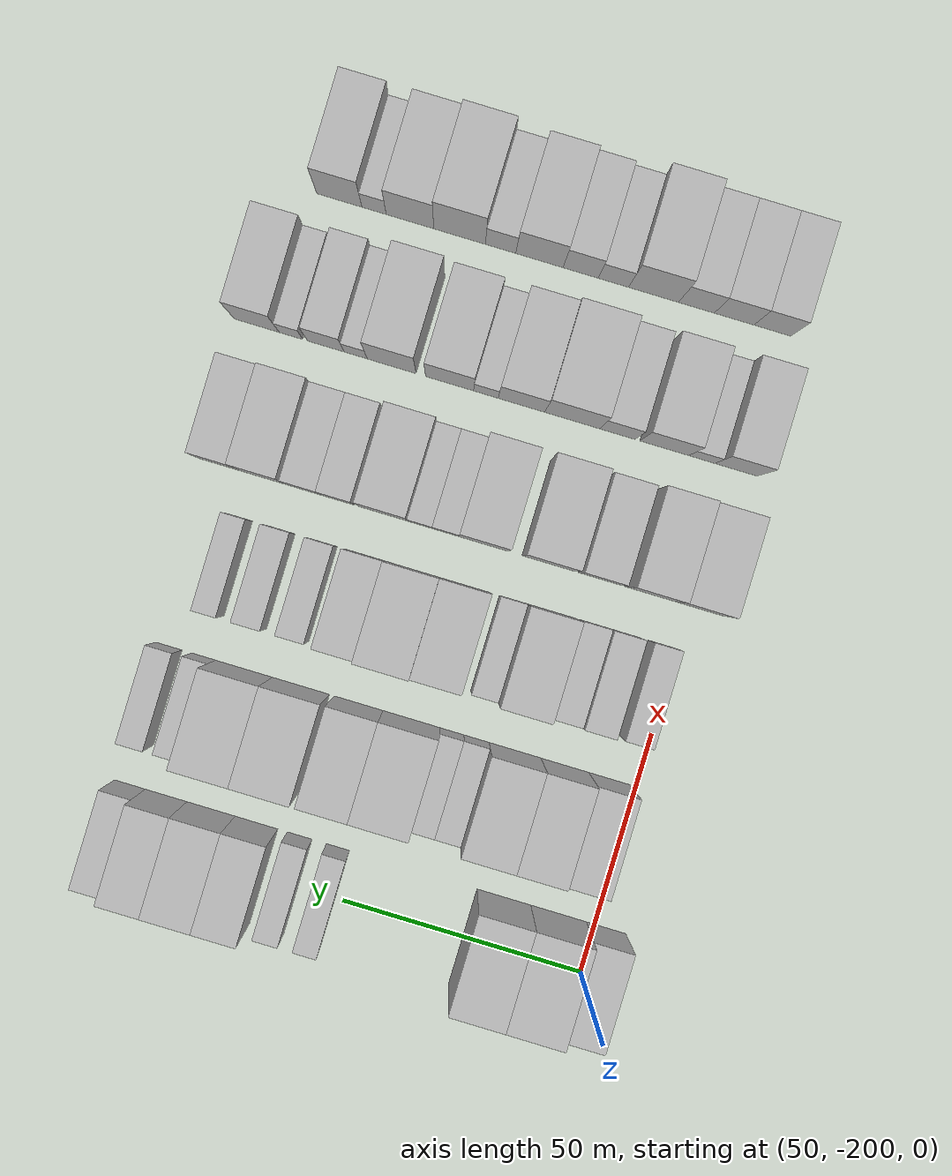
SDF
<sdf version="1.6">
 <world name="default">
  <model name="building_37">
   <static>1</static>
   <pose>50.0000 -202.4030 0 0.000000 0.000000 0.000000</pose>
   <link name="link">
    <pose>0 0 9.00 0 0 0</pose>
    <collision name="collision"><geometry><box><size>20.0000 8.2758 18.0000</size></box></geometry></collision>
    <visual name="visual">
     <cast_shadows>0</cast_shadows>
     <geometry><box><size>20.0000 8.2758 18.0000</size></box></geometry>
     <material>
      <script>
       <uri>model://HANNAS_wall/materials/scripts</uri>
       <uri>model://HANNAS_wall/materials/textures</uri>
       <name>vrc/HANNAS_wall</name>
      </script>
     </material>
    </visual>
   </link>
  </model>
  <model name="building_38">
   <static>1</static>
   <pose>50.0000 -192.3981 0 0.000000 0.000000 0.000000</pose>
   <link name="link">
    <pose>0 0 12.00 0 0 0</pose>
    <collision name="collision"><geometry><box><size>20.0000 11.7340 24.0000</size></box></geometry></collision>
    <visual name="visual">
     <cast_shadows>0</cast_shadows>
     <geometry><box><size>20.0000 11.7340 24.0000</size></box></geometry>
     <material>
      <script>
       <uri>model://HANNAS_wall/materials/scripts</uri>
       <uri>model://HANNAS_wall/materials/textures</uri>
       <name>vrc/HANNAS_wall</name>
      </script>
     </material>
    </visual>
   </link>
  </model>
  <model name="building_39">
   <static>1</static>
   <pose>50.0000 -180.8827 0 0.000000 0.000000 0.000000</pose>
   <link name="link">
    <pose>0 0 12.00 0 0 0</pose>
    <collision name="collision"><geometry><box><size>20.0000 11.2969 24.0000</size></box></geometry></collision>
    <visual name="visual">
     <cast_shadows>0</cast_shadows>
     <geometry><box><size>20.0000 11.2969 24.0000</size></box></geometry>
     <material>
      <script>
       <uri>model://HANNAS_wall/materials/scripts</uri>
       <uri>model://HANNAS_wall/materials/textures</uri>
       <name>vrc/HANNAS_wall</name>
      </script>
     </material>
    </visual>
   </link>
  </model>
  <model name="building_40">
   <static>1</static>
   <pose>50.0000 -145.9579 0 0.000000 0.000000 0.000000</pose>
   <link name="link">
    <pose>0 0 6.00 0 0 0</pose>
    <collision name="collision"><geometry><box><size>20.0000 4.8509 12.0000</size></box></geometry></collision>
    <visual name="visual">
     <cast_shadows>0</cast_shadows>
     <geometry><box><size>20.0000 4.8509 12.0000</size></box></geometry>
     <material>
      <script>
       <uri>model://HANNAS_wall/materials/scripts</uri>
       <uri>model://HANNAS_wall/materials/textures</uri>
       <name>vrc/HANNAS_wall</name>
      </script>
     </material>
    </visual>
   </link>
  </model>
  <model name="building_41">
   <static>1</static>
   <pose>50.0000 -137.9276 0 0.000000 0.000000 0.000000</pose>
   <link name="link">
    <pose>0 0 6.00 0 0 0</pose>
    <collision name="collision"><geometry><box><size>20.0000 5.2095 12.0000</size></box></geometry></collision>
    <visual name="visual">
     <cast_shadows>0</cast_shadows>
     <geometry><box><size>20.0000 5.2095 12.0000</size></box></geometry>
     <material>
      <script>
       <uri>model://HANNAS_wall/materials/scripts</uri>
       <uri>model://HANNAS_wall/materials/textures</uri>
       <name>vrc/HANNAS_wall</name>
      </script>
     </material>
    </visual>
   </link>
  </model>
  <model name="building_42">
   <static>1</static>
   <pose>50.0000 -128.8274 0 0.000000 0.000000 0.000000</pose>
   <link name="link">
    <pose>0 0 10.50 0 0 0</pose>
    <collision name="collision"><geometry><box><size>20.0000 8.9909 21.0000</size></box></geometry></collision>
    <visual name="visual">
     <cast_shadows>0</cast_shadows>
     <geometry><box><size>20.0000 8.9909 21.0000</size></box></geometry>
     <material>
      <script>
       <uri>model://HANNAS_wall/materials/scripts</uri>
       <uri>model://HANNAS_wall/materials/textures</uri>
       <name>vrc/HANNAS_wall</name>
      </script>
     </material>
    </visual>
   </link>
  </model>
  <model name="building_43">
   <static>1</static>
   <pose>50.0000 -119.2620 0 0.000000 0.000000 0.000000</pose>
   <link name="link">
    <pose>0 0 10.50 0 0 0</pose>
    <collision name="collision"><geometry><box><size>20.0000 10.1399 21.0000</size></box></geometry></collision>
    <visual name="visual">
     <cast_shadows>0</cast_shadows>
     <geometry><box><size>20.0000 10.1399 21.0000</size></box></geometry>
     <material>
      <script>
       <uri>model://HANNAS_wall/materials/scripts</uri>
       <uri>model://HANNAS_wall/materials/textures</uri>
       <name>vrc/HANNAS_wall</name>
      </script>
     </material>
    </visual>
   </link>
  </model>
  <model name="building_44">
   <static>1</static>
   <pose>50.0000 -109.8055 0 0.000000 0.000000 0.000000</pose>
   <link name="link">
    <pose>0 0 10.50 0 0 0</pose>
    <collision name="collision"><geometry><box><size>20.0000 8.7731 21.0000</size></box></geometry></collision>
    <visual name="visual">
     <cast_shadows>0</cast_shadows>
     <geometry><box><size>20.0000 8.7731 21.0000</size></box></geometry>
     <material>
      <script>
       <uri>model://HANNAS_wall/materials/scripts</uri>
       <uri>model://HANNAS_wall/materials/textures</uri>
       <name>vrc/HANNAS_wall</name>
      </script>
     </material>
    </visual>
   </link>
  </model>
  <model name="building_45">
   <static>1</static>
   <pose>50.0000 -102.1674 0 0.000000 0.000000 0.000000</pose>
   <link name="link">
    <pose>0 0 7.50 0 0 0</pose>
    <collision name="collision"><geometry><box><size>20.0000 6.5031 15.0000</size></box></geometry></collision>
    <visual name="visual">
     <cast_shadows>0</cast_shadows>
     <geometry><box><size>20.0000 6.5031 15.0000</size></box></geometry>
     <material>
      <script>
       <uri>model://HANNAS_wall/materials/scripts</uri>
       <uri>model://HANNAS_wall/materials/textures</uri>
       <name>vrc/HANNAS_wall</name>
      </script>
     </material>
    </visual>
   </link>
  </model>
  <model name="building_148">
   <static>1</static>
   <pose>79.0000 -194.3409 0 0.000000 0.000000 0.000000</pose>
   <link name="link">
    <pose>0 0 10.50 0 0 0</pose>
    <collision name="collision"><geometry><box><size>20.0000 8.6341 21.0000</size></box></geometry></collision>
    <visual name="visual">
     <cast_shadows>0</cast_shadows>
     <geometry><box><size>20.0000 8.6341 21.0000</size></box></geometry>
     <material>
      <script>
       <uri>model://HANNAS_wall/materials/scripts</uri>
       <uri>model://HANNAS_wall/materials/textures</uri>
       <name>vrc/HANNAS_wall</name>
      </script>
     </material>
    </visual>
   </link>
  </model>
  <model name="building_149">
   <static>1</static>
   <pose>79.0000 -184.9705 0 0.000000 0.000000 0.000000</pose>
   <link name="link">
    <pose>0 0 12.00 0 0 0</pose>
    <collision name="collision"><geometry><box><size>20.0000 10.1067 24.0000</size></box></geometry></collision>
    <visual name="visual">
     <cast_shadows>0</cast_shadows>
     <geometry><box><size>20.0000 10.1067 24.0000</size></box></geometry>
     <material>
      <script>
       <uri>model://HANNAS_wall/materials/scripts</uri>
       <uri>model://HANNAS_wall/materials/textures</uri>
       <name>vrc/HANNAS_wall</name>
      </script>
     </material>
    </visual>
   </link>
  </model>
  <model name="building_150">
   <static>1</static>
   <pose>79.0000 -174.4792 0 0.000000 0.000000 0.000000</pose>
   <link name="link">
    <pose>0 0 12.00 0 0 0</pose>
    <collision name="collision"><geometry><box><size>20.0000 10.8759 24.0000</size></box></geometry></collision>
    <visual name="visual">
     <cast_shadows>0</cast_shadows>
     <geometry><box><size>20.0000 10.8759 24.0000</size></box></geometry>
     <material>
      <script>
       <uri>model://HANNAS_wall/materials/scripts</uri>
       <uri>model://HANNAS_wall/materials/textures</uri>
       <name>vrc/HANNAS_wall</name>
      </script>
     </material>
    </visual>
   </link>
  </model>
  <model name="building_151">
   <static>1</static>
   <pose>79.0000 -166.3881 0 0.000000 0.000000 0.000000</pose>
   <link name="link">
    <pose>0 0 6.00 0 0 0</pose>
    <collision name="collision"><geometry><box><size>20.0000 5.3064 12.0000</size></box></geometry></collision>
    <visual name="visual">
     <cast_shadows>0</cast_shadows>
     <geometry><box><size>20.0000 5.3064 12.0000</size></box></geometry>
     <material>
      <script>
       <uri>model://HANNAS_wall/materials/scripts</uri>
       <uri>model://HANNAS_wall/materials/textures</uri>
       <name>vrc/HANNAS_wall</name>
      </script>
     </material>
    </visual>
   </link>
  </model>
  <model name="building_152">
   <static>1</static>
   <pose>79.0000 -161.2362 0 0.000000 0.000000 0.000000</pose>
   <link name="link">
    <pose>0 0 6.00 0 0 0</pose>
    <collision name="collision"><geometry><box><size>20.0000 4.9973 12.0000</size></box></geometry></collision>
    <visual name="visual">
     <cast_shadows>0</cast_shadows>
     <geometry><box><size>20.0000 4.9973 12.0000</size></box></geometry>
     <material>
      <script>
       <uri>model://HANNAS_wall/materials/scripts</uri>
       <uri>model://HANNAS_wall/materials/textures</uri>
       <name>vrc/HANNAS_wall</name>
      </script>
     </material>
    </visual>
   </link>
  </model>
  <model name="building_153">
   <static>1</static>
   <pose>79.0000 -152.7542 0 0.000000 0.000000 0.000000</pose>
   <link name="link">
    <pose>0 0 12.00 0 0 0</pose>
    <collision name="collision"><geometry><box><size>20.0000 11.9667 24.0000</size></box></geometry></collision>
    <visual name="visual">
     <cast_shadows>0</cast_shadows>
     <geometry><box><size>20.0000 11.9667 24.0000</size></box></geometry>
     <material>
      <script>
       <uri>model://HANNAS_wall/materials/scripts</uri>
       <uri>model://HANNAS_wall/materials/textures</uri>
       <name>vrc/HANNAS_wall</name>
      </script>
     </material>
    </visual>
   </link>
  </model>
  <model name="building_154">
   <static>1</static>
   <pose>79.0000 -141.6242 0 0.000000 0.000000 0.000000</pose>
   <link name="link">
    <pose>0 0 12.00 0 0 0</pose>
    <collision name="collision"><geometry><box><size>20.0000 10.2933 24.0000</size></box></geometry></collision>
    <visual name="visual">
     <cast_shadows>0</cast_shadows>
     <geometry><box><size>20.0000 10.2933 24.0000</size></box></geometry>
     <material>
      <script>
       <uri>model://HANNAS_wall/materials/scripts</uri>
       <uri>model://HANNAS_wall/materials/textures</uri>
       <name>vrc/HANNAS_wall</name>
      </script>
     </material>
    </visual>
   </link>
  </model>
  <model name="building_155">
   <static>1</static>
   <pose>79.0000 -129.4799 0 0.000000 0.000000 0.000000</pose>
   <link name="link">
    <pose>0 0 12.00 0 0 0</pose>
    <collision name="collision"><geometry><box><size>20.0000 11.9951 24.0000</size></box></geometry></collision>
    <visual name="visual">
     <cast_shadows>0</cast_shadows>
     <geometry><box><size>20.0000 11.9951 24.0000</size></box></geometry>
     <material>
      <script>
       <uri>model://HANNAS_wall/materials/scripts</uri>
       <uri>model://HANNAS_wall/materials/textures</uri>
       <name>vrc/HANNAS_wall</name>
      </script>
     </material>
    </visual>
   </link>
  </model>
  <model name="building_156">
   <static>1</static>
   <pose>79.0000 -117.5186 0 0.000000 0.000000 0.000000</pose>
   <link name="link">
    <pose>0 0 12.00 0 0 0</pose>
    <collision name="collision"><geometry><box><size>20.0000 11.9276 24.0000</size></box></geometry></collision>
    <visual name="visual">
     <cast_shadows>0</cast_shadows>
     <geometry><box><size>20.0000 11.9276 24.0000</size></box></geometry>
     <material>
      <script>
       <uri>model://HANNAS_wall/materials/scripts</uri>
       <uri>model://HANNAS_wall/materials/textures</uri>
       <name>vrc/HANNAS_wall</name>
      </script>
     </material>
    </visual>
   </link>
  </model>
  <model name="building_157">
   <static>1</static>
   <pose>79.0000 -108.9899 0 0.000000 0.000000 0.000000</pose>
   <link name="link">
    <pose>0 0 6.00 0 0 0</pose>
    <collision name="collision"><geometry><box><size>20.0000 5.1298 12.0000</size></box></geometry></collision>
    <visual name="visual">
     <cast_shadows>0</cast_shadows>
     <geometry><box><size>20.0000 5.1298 12.0000</size></box></geometry>
     <material>
      <script>
       <uri>model://HANNAS_wall/materials/scripts</uri>
       <uri>model://HANNAS_wall/materials/textures</uri>
       <name>vrc/HANNAS_wall</name>
      </script>
     </material>
    </visual>
   </link>
  </model>
  <model name="building_158">
   <static>1</static>
   <pose>79.0000 -101.6542 0 0.000000 0.000000 0.000000</pose>
   <link name="link">
    <pose>0 0 6.00 0 0 0</pose>
    <collision name="collision"><geometry><box><size>20.0000 5.5416 12.0000</size></box></geometry></collision>
    <visual name="visual">
     <cast_shadows>0</cast_shadows>
     <geometry><box><size>20.0000 5.5416 12.0000</size></box></geometry>
     <material>
      <script>
       <uri>model://HANNAS_wall/materials/scripts</uri>
       <uri>model://HANNAS_wall/materials/textures</uri>
       <name>vrc/HANNAS_wall</name>
      </script>
     </material>
    </visual>
   </link>
  </model>
  <model name="building_259">
   <static>1</static>
   <pose>108.0000 -196.7240 0 0.000000 0.000000 0.000000</pose>
   <link name="link">
    <pose>0 0 6.00 0 0 0</pose>
    <collision name="collision"><geometry><box><size>20.0000 5.8732 12.0000</size></box></geometry></collision>
    <visual name="visual">
     <cast_shadows>0</cast_shadows>
     <geometry><box><size>20.0000 5.8732 12.0000</size></box></geometry>
     <material>
      <script>
       <uri>model://HANNAS_wall/materials/scripts</uri>
       <uri>model://HANNAS_wall/materials/textures</uri>
       <name>vrc/HANNAS_wall</name>
      </script>
     </material>
    </visual>
   </link>
  </model>
  <model name="building_260">
   <static>1</static>
   <pose>108.0000 -188.5270 0 0.000000 0.000000 0.000000</pose>
   <link name="link">
    <pose>0 0 7.50 0 0 0</pose>
    <collision name="collision"><geometry><box><size>20.0000 6.5209 15.0000</size></box></geometry></collision>
    <visual name="visual">
     <cast_shadows>0</cast_shadows>
     <geometry><box><size>20.0000 6.5209 15.0000</size></box></geometry>
     <material>
      <script>
       <uri>model://HANNAS_wall/materials/scripts</uri>
       <uri>model://HANNAS_wall/materials/textures</uri>
       <name>vrc/HANNAS_wall</name>
      </script>
     </material>
    </visual>
   </link>
  </model>
  <model name="building_261">
   <static>1</static>
   <pose>108.0000 -182.3251 0 0.000000 0.000000 0.000000</pose>
   <link name="link">
    <pose>0 0 6.00 0 0 0</pose>
    <collision name="collision"><geometry><box><size>20.0000 5.8831 12.0000</size></box></geometry></collision>
    <visual name="visual">
     <cast_shadows>0</cast_shadows>
     <geometry><box><size>20.0000 5.8831 12.0000</size></box></geometry>
     <material>
      <script>
       <uri>model://HANNAS_wall/materials/scripts</uri>
       <uri>model://HANNAS_wall/materials/textures</uri>
       <name>vrc/HANNAS_wall</name>
      </script>
     </material>
    </visual>
   </link>
  </model>
  <model name="building_262">
   <static>1</static>
   <pose>108.0000 -173.1877 0 0.000000 0.000000 0.000000</pose>
   <link name="link">
    <pose>0 0 12.00 0 0 0</pose>
    <collision name="collision"><geometry><box><size>20.0000 10.3917 24.0000</size></box></geometry></collision>
    <visual name="visual">
     <cast_shadows>0</cast_shadows>
     <geometry><box><size>20.0000 10.3917 24.0000</size></box></geometry>
     <material>
      <script>
       <uri>model://HANNAS_wall/materials/scripts</uri>
       <uri>model://HANNAS_wall/materials/textures</uri>
       <name>vrc/HANNAS_wall</name>
      </script>
     </material>
    </visual>
   </link>
  </model>
  <model name="building_263">
   <static>1</static>
   <pose>108.0000 -165.2418 0 0.000000 0.000000 0.000000</pose>
   <link name="link">
    <pose>0 0 6.00 0 0 0</pose>
    <collision name="collision"><geometry><box><size>20.0000 5.5001 12.0000</size></box></geometry></collision>
    <visual name="visual">
     <cast_shadows>0</cast_shadows>
     <geometry><box><size>20.0000 5.5001 12.0000</size></box></geometry>
     <material>
      <script>
       <uri>model://HANNAS_wall/materials/scripts</uri>
       <uri>model://HANNAS_wall/materials/textures</uri>
       <name>vrc/HANNAS_wall</name>
      </script>
     </material>
    </visual>
   </link>
  </model>
  <model name="building_264">
   <static>1</static>
   <pose>108.0000 -155.2765 0 0.000000 0.000000 0.000000</pose>
   <link name="link">
    <pose>0 0 10.50 0 0 0</pose>
    <collision name="collision"><geometry><box><size>20.0000 10.4306 21.0000</size></box></geometry></collision>
    <visual name="visual">
     <cast_shadows>0</cast_shadows>
     <geometry><box><size>20.0000 10.4306 21.0000</size></box></geometry>
     <material>
      <script>
       <uri>model://HANNAS_wall/materials/scripts</uri>
       <uri>model://HANNAS_wall/materials/textures</uri>
       <name>vrc/HANNAS_wall</name>
      </script>
     </material>
    </visual>
   </link>
  </model>
  <model name="building_265">
   <static>1</static>
   <pose>108.0000 -144.4649 0 0.000000 0.000000 0.000000</pose>
   <link name="link">
    <pose>0 0 12.00 0 0 0</pose>
    <collision name="collision"><geometry><box><size>20.0000 11.1927 24.0000</size></box></geometry></collision>
    <visual name="visual">
     <cast_shadows>0</cast_shadows>
     <geometry><box><size>20.0000 11.1927 24.0000</size></box></geometry>
     <material>
      <script>
       <uri>model://HANNAS_wall/materials/scripts</uri>
       <uri>model://HANNAS_wall/materials/textures</uri>
       <name>vrc/HANNAS_wall</name>
      </script>
     </material>
    </visual>
   </link>
  </model>
  <model name="building_266">
   <static>1</static>
   <pose>108.0000 -134.6273 0 0.000000 0.000000 0.000000</pose>
   <link name="link">
    <pose>0 0 9.00 0 0 0</pose>
    <collision name="collision"><geometry><box><size>20.0000 8.4825 18.0000</size></box></geometry></collision>
    <visual name="visual">
     <cast_shadows>0</cast_shadows>
     <geometry><box><size>20.0000 8.4825 18.0000</size></box></geometry>
     <material>
      <script>
       <uri>model://HANNAS_wall/materials/scripts</uri>
       <uri>model://HANNAS_wall/materials/textures</uri>
       <name>vrc/HANNAS_wall</name>
      </script>
     </material>
    </visual>
   </link>
  </model>
  <model name="building_267">
   <static>1</static>
   <pose>108.0000 -125.4442 0 0.000000 0.000000 0.000000</pose>
   <link name="link">
    <pose>0 0 6.00 0 0 0</pose>
    <collision name="collision"><geometry><box><size>20.0000 5.8836 12.0000</size></box></geometry></collision>
    <visual name="visual">
     <cast_shadows>0</cast_shadows>
     <geometry><box><size>20.0000 5.8836 12.0000</size></box></geometry>
     <material>
      <script>
       <uri>model://HANNAS_wall/materials/scripts</uri>
       <uri>model://HANNAS_wall/materials/textures</uri>
       <name>vrc/HANNAS_wall</name>
      </script>
     </material>
    </visual>
   </link>
  </model>
  <model name="building_268">
   <static>1</static>
   <pose>108.0000 -116.5148 0 0.000000 0.000000 0.000000</pose>
   <link name="link">
    <pose>0 0 6.00 0 0 0</pose>
    <collision name="collision"><geometry><box><size>20.0000 5.9753 12.0000</size></box></geometry></collision>
    <visual name="visual">
     <cast_shadows>0</cast_shadows>
     <geometry><box><size>20.0000 5.9753 12.0000</size></box></geometry>
     <material>
      <script>
       <uri>model://HANNAS_wall/materials/scripts</uri>
       <uri>model://HANNAS_wall/materials/textures</uri>
       <name>vrc/HANNAS_wall</name>
      </script>
     </material>
    </visual>
   </link>
  </model>
  <model name="building_269">
   <static>1</static>
   <pose>108.0000 -108.0025 0 0.000000 0.000000 0.000000</pose>
   <link name="link">
    <pose>0 0 6.00 0 0 0</pose>
    <collision name="collision"><geometry><box><size>20.0000 5.0493 12.0000</size></box></geometry></collision>
    <visual name="visual">
     <cast_shadows>0</cast_shadows>
     <geometry><box><size>20.0000 5.0493 12.0000</size></box></geometry>
     <material>
      <script>
       <uri>model://HANNAS_wall/materials/scripts</uri>
       <uri>model://HANNAS_wall/materials/textures</uri>
       <name>vrc/HANNAS_wall</name>
      </script>
     </material>
    </visual>
   </link>
  </model>
  <model name="building_365">
   <static>1</static>
   <pose>137.0000 -201.3687 0 0.000000 0.000000 0.000000</pose>
   <link name="link">
    <pose>0 0 10.50 0 0 0</pose>
    <collision name="collision"><geometry><box><size>20.0000 10.2893 21.0000</size></box></geometry></collision>
    <visual name="visual">
     <cast_shadows>0</cast_shadows>
     <geometry><box><size>20.0000 10.2893 21.0000</size></box></geometry>
     <material>
      <script>
       <uri>model://HANNAS_wall/materials/scripts</uri>
       <uri>model://HANNAS_wall/materials/textures</uri>
       <name>vrc/HANNAS_wall</name>
      </script>
     </material>
    </visual>
   </link>
  </model>
  <model name="building_366">
   <static>1</static>
   <pose>137.0000 -191.1191 0 0.000000 0.000000 0.000000</pose>
   <link name="link">
    <pose>0 0 12.00 0 0 0</pose>
    <collision name="collision"><geometry><box><size>20.0000 10.2100 24.0000</size></box></geometry></collision>
    <visual name="visual">
     <cast_shadows>0</cast_shadows>
     <geometry><box><size>20.0000 10.2100 24.0000</size></box></geometry>
     <material>
      <script>
       <uri>model://HANNAS_wall/materials/scripts</uri>
       <uri>model://HANNAS_wall/materials/textures</uri>
       <name>vrc/HANNAS_wall</name>
      </script>
     </material>
    </visual>
   </link>
  </model>
  <model name="building_367">
   <static>1</static>
   <pose>137.0000 -180.6728 0 0.000000 0.000000 0.000000</pose>
   <link name="link">
    <pose>0 0 9.00 0 0 0</pose>
    <collision name="collision"><geometry><box><size>20.0000 8.6825 18.0000</size></box></geometry></collision>
    <visual name="visual">
     <cast_shadows>0</cast_shadows>
     <geometry><box><size>20.0000 8.6825 18.0000</size></box></geometry>
     <material>
      <script>
       <uri>model://HANNAS_wall/materials/scripts</uri>
       <uri>model://HANNAS_wall/materials/textures</uri>
       <name>vrc/HANNAS_wall</name>
      </script>
     </material>
    </visual>
   </link>
  </model>
  <model name="building_368">
   <static>1</static>
   <pose>137.0000 -169.9343 0 0.000000 0.000000 0.000000</pose>
   <link name="link">
    <pose>0 0 12.00 0 0 0</pose>
    <collision name="collision"><geometry><box><size>20.0000 10.7946 24.0000</size></box></geometry></collision>
    <visual name="visual">
     <cast_shadows>0</cast_shadows>
     <geometry><box><size>20.0000 10.7946 24.0000</size></box></geometry>
     <material>
      <script>
       <uri>model://HANNAS_wall/materials/scripts</uri>
       <uri>model://HANNAS_wall/materials/textures</uri>
       <name>vrc/HANNAS_wall</name>
      </script>
     </material>
    </visual>
   </link>
  </model>
  <model name="building_369">
   <static>1</static>
   <pose>137.0000 -156.4330 0 0.000000 0.000000 0.000000</pose>
   <link name="link">
    <pose>0 0 12.00 0 0 0</pose>
    <collision name="collision"><geometry><box><size>20.0000 10.2080 24.0000</size></box></geometry></collision>
    <visual name="visual">
     <cast_shadows>0</cast_shadows>
     <geometry><box><size>20.0000 10.2080 24.0000</size></box></geometry>
     <material>
      <script>
       <uri>model://HANNAS_wall/materials/scripts</uri>
       <uri>model://HANNAS_wall/materials/textures</uri>
       <name>vrc/HANNAS_wall</name>
      </script>
     </material>
    </visual>
   </link>
  </model>
  <model name="building_370">
   <static>1</static>
   <pose>137.0000 -148.5334 0 0.000000 0.000000 0.000000</pose>
   <link name="link">
    <pose>0 0 6.00 0 0 0</pose>
    <collision name="collision"><geometry><box><size>20.0000 5.5913 12.0000</size></box></geometry></collision>
    <visual name="visual">
     <cast_shadows>0</cast_shadows>
     <geometry><box><size>20.0000 5.5913 12.0000</size></box></geometry>
     <material>
      <script>
       <uri>model://HANNAS_wall/materials/scripts</uri>
       <uri>model://HANNAS_wall/materials/textures</uri>
       <name>vrc/HANNAS_wall</name>
      </script>
     </material>
    </visual>
   </link>
  </model>
  <model name="building_371">
   <static>1</static>
   <pose>137.0000 -143.1771 0 0.000000 0.000000 0.000000</pose>
   <link name="link">
    <pose>0 0 6.00 0 0 0</pose>
    <collision name="collision"><geometry><box><size>20.0000 5.1212 12.0000</size></box></geometry></collision>
    <visual name="visual">
     <cast_shadows>0</cast_shadows>
     <geometry><box><size>20.0000 5.1212 12.0000</size></box></geometry>
     <material>
      <script>
       <uri>model://HANNAS_wall/materials/scripts</uri>
       <uri>model://HANNAS_wall/materials/textures</uri>
       <name>vrc/HANNAS_wall</name>
      </script>
     </material>
    </visual>
   </link>
  </model>
  <model name="building_372">
   <static>1</static>
   <pose>137.0000 -135.4731 0 0.000000 0.000000 0.000000</pose>
   <link name="link">
    <pose>0 0 10.50 0 0 0</pose>
    <collision name="collision"><geometry><box><size>20.0000 10.2868 21.0000</size></box></geometry></collision>
    <visual name="visual">
     <cast_shadows>0</cast_shadows>
     <geometry><box><size>20.0000 10.2868 21.0000</size></box></geometry>
     <material>
      <script>
       <uri>model://HANNAS_wall/materials/scripts</uri>
       <uri>model://HANNAS_wall/materials/textures</uri>
       <name>vrc/HANNAS_wall</name>
      </script>
     </material>
    </visual>
   </link>
  </model>
  <model name="building_373">
   <static>1</static>
   <pose>137.0000 -125.7981 0 0.000000 0.000000 0.000000</pose>
   <link name="link">
    <pose>0 0 7.50 0 0 0</pose>
    <collision name="collision"><geometry><box><size>20.0000 7.0632 15.0000</size></box></geometry></collision>
    <visual name="visual">
     <cast_shadows>0</cast_shadows>
     <geometry><box><size>20.0000 7.0632 15.0000</size></box></geometry>
     <material>
      <script>
       <uri>model://HANNAS_wall/materials/scripts</uri>
       <uri>model://HANNAS_wall/materials/textures</uri>
       <name>vrc/HANNAS_wall</name>
      </script>
     </material>
    </visual>
   </link>
  </model>
  <model name="building_374">
   <static>1</static>
   <pose>137.0000 -118.6183 0 0.000000 0.000000 0.000000</pose>
   <link name="link">
    <pose>0 0 7.50 0 0 0</pose>
    <collision name="collision"><geometry><box><size>20.0000 7.2965 15.0000</size></box></geometry></collision>
    <visual name="visual">
     <cast_shadows>0</cast_shadows>
     <geometry><box><size>20.0000 7.2965 15.0000</size></box></geometry>
     <material>
      <script>
       <uri>model://HANNAS_wall/materials/scripts</uri>
       <uri>model://HANNAS_wall/materials/textures</uri>
       <name>vrc/HANNAS_wall</name>
      </script>
     </material>
    </visual>
   </link>
  </model>
  <model name="building_375">
   <static>1</static>
   <pose>137.0000 -110.0335 0 0.000000 0.000000 0.000000</pose>
   <link name="link">
    <pose>0 0 10.50 0 0 0</pose>
    <collision name="collision"><geometry><box><size>20.0000 9.8731 21.0000</size></box></geometry></collision>
    <visual name="visual">
     <cast_shadows>0</cast_shadows>
     <geometry><box><size>20.0000 9.8731 21.0000</size></box></geometry>
     <material>
      <script>
       <uri>model://HANNAS_wall/materials/scripts</uri>
       <uri>model://HANNAS_wall/materials/textures</uri>
       <name>vrc/HANNAS_wall</name>
      </script>
     </material>
    </visual>
   </link>
  </model>
  <model name="building_376">
   <static>1</static>
   <pose>137.0000 -100.8824 0 0.000000 0.000000 0.000000</pose>
   <link name="link">
    <pose>0 0 9.00 0 0 0</pose>
    <collision name="collision"><geometry><box><size>20.0000 8.4292 18.0000</size></box></geometry></collision>
    <visual name="visual">
     <cast_shadows>0</cast_shadows>
     <geometry><box><size>20.0000 8.4292 18.0000</size></box></geometry>
     <material>
      <script>
       <uri>model://HANNAS_wall/materials/scripts</uri>
       <uri>model://HANNAS_wall/materials/textures</uri>
       <name>vrc/HANNAS_wall</name>
      </script>
     </material>
    </visual>
   </link>
  </model>
  <model name="building_475">
   <static>1</static>
   <pose>166.0000 -200.8697 0 0.000000 0.000000 0.000000</pose>
   <link name="link">
    <pose>0 0 10.50 0 0 0</pose>
    <collision name="collision"><geometry><box><size>20.0000 8.8909 21.0000</size></box></geometry></collision>
    <visual name="visual">
     <cast_shadows>0</cast_shadows>
     <geometry><box><size>20.0000 8.8909 21.0000</size></box></geometry>
     <material>
      <script>
       <uri>model://HANNAS_wall/materials/scripts</uri>
       <uri>model://HANNAS_wall/materials/textures</uri>
       <name>vrc/HANNAS_wall</name>
      </script>
     </material>
    </visual>
   </link>
  </model>
  <model name="building_476">
   <static>1</static>
   <pose>166.0000 -193.6848 0 0.000000 0.000000 0.000000</pose>
   <link name="link">
    <pose>0 0 6.00 0 0 0</pose>
    <collision name="collision"><geometry><box><size>20.0000 5.4790 12.0000</size></box></geometry></collision>
    <visual name="visual">
     <cast_shadows>0</cast_shadows>
     <geometry><box><size>20.0000 5.4790 12.0000</size></box></geometry>
     <material>
      <script>
       <uri>model://HANNAS_wall/materials/scripts</uri>
       <uri>model://HANNAS_wall/materials/textures</uri>
       <name>vrc/HANNAS_wall</name>
      </script>
     </material>
    </visual>
   </link>
  </model>
  <model name="building_477">
   <static>1</static>
   <pose>166.0000 -185.8057 0 0.000000 0.000000 0.000000</pose>
   <link name="link">
    <pose>0 0 10.50 0 0 0</pose>
    <collision name="collision"><geometry><box><size>20.0000 10.2792 21.0000</size></box></geometry></collision>
    <visual name="visual">
     <cast_shadows>0</cast_shadows>
     <geometry><box><size>20.0000 10.2792 21.0000</size></box></geometry>
     <material>
      <script>
       <uri>model://HANNAS_wall/materials/scripts</uri>
       <uri>model://HANNAS_wall/materials/textures</uri>
       <name>vrc/HANNAS_wall</name>
      </script>
     </material>
    </visual>
   </link>
  </model>
  <model name="building_478">
   <static>1</static>
   <pose>166.0000 -175.9437 0 0.000000 0.000000 0.000000</pose>
   <link name="link">
    <pose>0 0 9.00 0 0 0</pose>
    <collision name="collision"><geometry><box><size>20.0000 7.4447 18.0000</size></box></geometry></collision>
    <visual name="visual">
     <cast_shadows>0</cast_shadows>
     <geometry><box><size>20.0000 7.4447 18.0000</size></box></geometry>
     <material>
      <script>
       <uri>model://HANNAS_wall/materials/scripts</uri>
       <uri>model://HANNAS_wall/materials/textures</uri>
       <name>vrc/HANNAS_wall</name>
      </script>
     </material>
    </visual>
   </link>
  </model>
  <model name="building_479">
   <static>1</static>
   <pose>166.0000 -166.4022 0 0.000000 0.000000 0.000000</pose>
   <link name="link">
    <pose>0 0 12.00 0 0 0</pose>
    <collision name="collision"><geometry><box><size>20.0000 11.6382 24.0000</size></box></geometry></collision>
    <visual name="visual">
     <cast_shadows>0</cast_shadows>
     <geometry><box><size>20.0000 11.6382 24.0000</size></box></geometry>
     <material>
      <script>
       <uri>model://HANNAS_wall/materials/scripts</uri>
       <uri>model://HANNAS_wall/materials/textures</uri>
       <name>vrc/HANNAS_wall</name>
      </script>
     </material>
    </visual>
   </link>
  </model>
  <model name="building_480">
   <static>1</static>
   <pose>166.0000 -155.6877 0 0.000000 0.000000 0.000000</pose>
   <link name="link">
    <pose>0 0 10.50 0 0 0</pose>
    <collision name="collision"><geometry><box><size>20.0000 9.7909 21.0000</size></box></geometry></collision>
    <visual name="visual">
     <cast_shadows>0</cast_shadows>
     <geometry><box><size>20.0000 9.7909 21.0000</size></box></geometry>
     <material>
      <script>
       <uri>model://HANNAS_wall/materials/scripts</uri>
       <uri>model://HANNAS_wall/materials/textures</uri>
       <name>vrc/HANNAS_wall</name>
      </script>
     </material>
    </visual>
   </link>
  </model>
  <model name="building_481">
   <static>1</static>
   <pose>166.0000 -148.2081 0 0.000000 0.000000 0.000000</pose>
   <link name="link">
    <pose>0 0 6.00 0 0 0</pose>
    <collision name="collision"><geometry><box><size>20.0000 5.1683 12.0000</size></box></geometry></collision>
    <visual name="visual">
     <cast_shadows>0</cast_shadows>
     <geometry><box><size>20.0000 5.1683 12.0000</size></box></geometry>
     <material>
      <script>
       <uri>model://HANNAS_wall/materials/scripts</uri>
       <uri>model://HANNAS_wall/materials/textures</uri>
       <name>vrc/HANNAS_wall</name>
      </script>
     </material>
    </visual>
   </link>
  </model>
  <model name="building_482">
   <static>1</static>
   <pose>166.0000 -140.5796 0 0.000000 0.000000 0.000000</pose>
   <link name="link">
    <pose>0 0 10.50 0 0 0</pose>
    <collision name="collision"><geometry><box><size>20.0000 10.0886 21.0000</size></box></geometry></collision>
    <visual name="visual">
     <cast_shadows>0</cast_shadows>
     <geometry><box><size>20.0000 10.0886 21.0000</size></box></geometry>
     <material>
      <script>
       <uri>model://HANNAS_wall/materials/scripts</uri>
       <uri>model://HANNAS_wall/materials/textures</uri>
       <name>vrc/HANNAS_wall</name>
      </script>
     </material>
    </visual>
   </link>
  </model>
  <model name="building_483">
   <static>1</static>
   <pose>166.0000 -128.3890 0 0.000000 0.000000 0.000000</pose>
   <link name="link">
    <pose>0 0 12.00 0 0 0</pose>
    <collision name="collision"><geometry><box><size>20.0000 10.2926 24.0000</size></box></geometry></collision>
    <visual name="visual">
     <cast_shadows>0</cast_shadows>
     <geometry><box><size>20.0000 10.2926 24.0000</size></box></geometry>
     <material>
      <script>
       <uri>model://HANNAS_wall/materials/scripts</uri>
       <uri>model://HANNAS_wall/materials/textures</uri>
       <name>vrc/HANNAS_wall</name>
      </script>
     </material>
    </visual>
   </link>
  </model>
  <model name="building_484">
   <static>1</static>
   <pose>166.0000 -120.8075 0 0.000000 0.000000 0.000000</pose>
   <link name="link">
    <pose>0 0 6.00 0 0 0</pose>
    <collision name="collision"><geometry><box><size>20.0000 4.8705 12.0000</size></box></geometry></collision>
    <visual name="visual">
     <cast_shadows>0</cast_shadows>
     <geometry><box><size>20.0000 4.8705 12.0000</size></box></geometry>
     <material>
      <script>
       <uri>model://HANNAS_wall/materials/scripts</uri>
       <uri>model://HANNAS_wall/materials/textures</uri>
       <name>vrc/HANNAS_wall</name>
      </script>
     </material>
    </visual>
   </link>
  </model>
  <model name="building_485">
   <static>1</static>
   <pose>166.0000 -114.5268 0 0.000000 0.000000 0.000000</pose>
   <link name="link">
    <pose>0 0 9.00 0 0 0</pose>
    <collision name="collision"><geometry><box><size>20.0000 7.6908 18.0000</size></box></geometry></collision>
    <visual name="visual">
     <cast_shadows>0</cast_shadows>
     <geometry><box><size>20.0000 7.6908 18.0000</size></box></geometry>
     <material>
      <script>
       <uri>model://HANNAS_wall/materials/scripts</uri>
       <uri>model://HANNAS_wall/materials/textures</uri>
       <name>vrc/HANNAS_wall</name>
      </script>
     </material>
    </visual>
   </link>
  </model>
  <model name="building_486">
   <static>1</static>
   <pose>166.0000 -107.2100 0 0.000000 0.000000 0.000000</pose>
   <link name="link">
    <pose>0 0 6.00 0 0 0</pose>
    <collision name="collision"><geometry><box><size>20.0000 4.9429 12.0000</size></box></geometry></collision>
    <visual name="visual">
     <cast_shadows>0</cast_shadows>
     <geometry><box><size>20.0000 4.9429 12.0000</size></box></geometry>
     <material>
      <script>
       <uri>model://HANNAS_wall/materials/scripts</uri>
       <uri>model://HANNAS_wall/materials/textures</uri>
       <name>vrc/HANNAS_wall</name>
      </script>
     </material>
    </visual>
   </link>
  </model>
  <model name="building_487">
   <static>1</static>
   <pose>166.0000 -100.0155 0 0.000000 0.000000 0.000000</pose>
   <link name="link">
    <pose>0 0 10.50 0 0 0</pose>
    <collision name="collision"><geometry><box><size>20.0000 9.4459 21.0000</size></box></geometry></collision>
    <visual name="visual">
     <cast_shadows>0</cast_shadows>
     <geometry><box><size>20.0000 9.4459 21.0000</size></box></geometry>
     <material>
      <script>
       <uri>model://HANNAS_wall/materials/scripts</uri>
       <uri>model://HANNAS_wall/materials/textures</uri>
       <name>vrc/HANNAS_wall</name>
      </script>
     </material>
    </visual>
   </link>
  </model>
  <model name="building_597">
   <static>1</static>
   <pose>195.0000 -199.8531 0 0.000000 0.000000 0.000000</pose>
   <link name="link">
    <pose>0 0 9.00 0 0 0</pose>
    <collision name="collision"><geometry><box><size>20.0000 7.8205 18.0000</size></box></geometry></collision>
    <visual name="visual">
     <cast_shadows>0</cast_shadows>
     <geometry><box><size>20.0000 7.8205 18.0000</size></box></geometry>
     <material>
      <script>
       <uri>model://HANNAS_wall/materials/scripts</uri>
       <uri>model://HANNAS_wall/materials/textures</uri>
       <name>vrc/HANNAS_wall</name>
      </script>
     </material>
    </visual>
   </link>
  </model>
  <model name="building_598">
   <static>1</static>
   <pose>195.0000 -191.7808 0 0.000000 0.000000 0.000000</pose>
   <link name="link">
    <pose>0 0 9.00 0 0 0</pose>
    <collision name="collision"><geometry><box><size>20.0000 8.3240 18.0000</size></box></geometry></collision>
    <visual name="visual">
     <cast_shadows>0</cast_shadows>
     <geometry><box><size>20.0000 8.3240 18.0000</size></box></geometry>
     <material>
      <script>
       <uri>model://HANNAS_wall/materials/scripts</uri>
       <uri>model://HANNAS_wall/materials/textures</uri>
       <name>vrc/HANNAS_wall</name>
      </script>
     </material>
    </visual>
   </link>
  </model>
  <model name="building_599">
   <static>1</static>
   <pose>195.0000 -183.8403 0 0.000000 0.000000 0.000000</pose>
   <link name="link">
    <pose>0 0 9.00 0 0 0</pose>
    <collision name="collision"><geometry><box><size>20.0000 7.5570 18.0000</size></box></geometry></collision>
    <visual name="visual">
     <cast_shadows>0</cast_shadows>
     <geometry><box><size>20.0000 7.5570 18.0000</size></box></geometry>
     <material>
      <script>
       <uri>model://HANNAS_wall/materials/scripts</uri>
       <uri>model://HANNAS_wall/materials/textures</uri>
       <name>vrc/HANNAS_wall</name>
      </script>
     </material>
    </visual>
   </link>
  </model>
  <model name="building_600">
   <static>1</static>
   <pose>195.0000 -174.7954 0 0.000000 0.000000 0.000000</pose>
   <link name="link">
    <pose>0 0 12.00 0 0 0</pose>
    <collision name="collision"><geometry><box><size>20.0000 10.5327 24.0000</size></box></geometry></collision>
    <visual name="visual">
     <cast_shadows>0</cast_shadows>
     <geometry><box><size>20.0000 10.5327 24.0000</size></box></geometry>
     <material>
      <script>
       <uri>model://HANNAS_wall/materials/scripts</uri>
       <uri>model://HANNAS_wall/materials/textures</uri>
       <name>vrc/HANNAS_wall</name>
      </script>
     </material>
    </visual>
   </link>
  </model>
  <model name="building_601">
   <static>1</static>
   <pose>195.0000 -166.3251 0 0.000000 0.000000 0.000000</pose>
   <link name="link">
    <pose>0 0 7.50 0 0 0</pose>
    <collision name="collision"><geometry><box><size>20.0000 6.4078 15.0000</size></box></geometry></collision>
    <visual name="visual">
     <cast_shadows>0</cast_shadows>
     <geometry><box><size>20.0000 6.4078 15.0000</size></box></geometry>
     <material>
      <script>
       <uri>model://HANNAS_wall/materials/scripts</uri>
       <uri>model://HANNAS_wall/materials/textures</uri>
       <name>vrc/HANNAS_wall</name>
      </script>
     </material>
    </visual>
   </link>
  </model>
  <model name="building_602">
   <static>1</static>
   <pose>195.0000 -159.4264 0 0.000000 0.000000 0.000000</pose>
   <link name="link">
    <pose>0 0 9.00 0 0 0</pose>
    <collision name="collision"><geometry><box><size>20.0000 7.3897 18.0000</size></box></geometry></collision>
    <visual name="visual">
     <cast_shadows>0</cast_shadows>
     <geometry><box><size>20.0000 7.3897 18.0000</size></box></geometry>
     <material>
      <script>
       <uri>model://HANNAS_wall/materials/scripts</uri>
       <uri>model://HANNAS_wall/materials/textures</uri>
       <name>vrc/HANNAS_wall</name>
      </script>
     </material>
    </visual>
   </link>
  </model>
  <model name="building_603">
   <static>1</static>
   <pose>195.0000 -150.7620 0 0.000000 0.000000 0.000000</pose>
   <link name="link">
    <pose>0 0 10.50 0 0 0</pose>
    <collision name="collision"><geometry><box><size>20.0000 9.9390 21.0000</size></box></geometry></collision>
    <visual name="visual">
     <cast_shadows>0</cast_shadows>
     <geometry><box><size>20.0000 9.9390 21.0000</size></box></geometry>
     <material>
      <script>
       <uri>model://HANNAS_wall/materials/scripts</uri>
       <uri>model://HANNAS_wall/materials/textures</uri>
       <name>vrc/HANNAS_wall</name>
      </script>
     </material>
    </visual>
   </link>
  </model>
  <model name="building_604">
   <static>1</static>
   <pose>195.0000 -142.5804 0 0.000000 0.000000 0.000000</pose>
   <link name="link">
    <pose>0 0 7.50 0 0 0</pose>
    <collision name="collision"><geometry><box><size>20.0000 6.4241 15.0000</size></box></geometry></collision>
    <visual name="visual">
     <cast_shadows>0</cast_shadows>
     <geometry><box><size>20.0000 6.4241 15.0000</size></box></geometry>
     <material>
      <script>
       <uri>model://HANNAS_wall/materials/scripts</uri>
       <uri>model://HANNAS_wall/materials/textures</uri>
       <name>vrc/HANNAS_wall</name>
      </script>
     </material>
    </visual>
   </link>
  </model>
  <model name="building_605">
   <static>1</static>
   <pose>195.0000 -133.9360 0 0.000000 0.000000 0.000000</pose>
   <link name="link">
    <pose>0 0 12.00 0 0 0</pose>
    <collision name="collision"><geometry><box><size>20.0000 10.8647 24.0000</size></box></geometry></collision>
    <visual name="visual">
     <cast_shadows>0</cast_shadows>
     <geometry><box><size>20.0000 10.8647 24.0000</size></box></geometry>
     <material>
      <script>
       <uri>model://HANNAS_wall/materials/scripts</uri>
       <uri>model://HANNAS_wall/materials/textures</uri>
       <name>vrc/HANNAS_wall</name>
      </script>
     </material>
    </visual>
   </link>
  </model>
  <model name="building_606">
   <static>1</static>
   <pose>195.0000 -123.5091 0 0.000000 0.000000 0.000000</pose>
   <link name="link">
    <pose>0 0 10.50 0 0 0</pose>
    <collision name="collision"><geometry><box><size>20.0000 9.9890 21.0000</size></box></geometry></collision>
    <visual name="visual">
     <cast_shadows>0</cast_shadows>
     <geometry><box><size>20.0000 9.9890 21.0000</size></box></geometry>
     <material>
      <script>
       <uri>model://HANNAS_wall/materials/scripts</uri>
       <uri>model://HANNAS_wall/materials/textures</uri>
       <name>vrc/HANNAS_wall</name>
      </script>
     </material>
    </visual>
   </link>
  </model>
  <model name="building_607">
   <static>1</static>
   <pose>195.0000 -115.9565 0 0.000000 0.000000 0.000000</pose>
   <link name="link">
    <pose>0 0 6.00 0 0 0</pose>
    <collision name="collision"><geometry><box><size>20.0000 5.1163 12.0000</size></box></geometry></collision>
    <visual name="visual">
     <cast_shadows>0</cast_shadows>
     <geometry><box><size>20.0000 5.1163 12.0000</size></box></geometry>
     <material>
      <script>
       <uri>model://HANNAS_wall/materials/scripts</uri>
       <uri>model://HANNAS_wall/materials/textures</uri>
       <name>vrc/HANNAS_wall</name>
      </script>
     </material>
    </visual>
   </link>
  </model>
  <model name="building_608">
   <static>1</static>
   <pose>195.0000 -108.6515 0 0.000000 0.000000 0.000000</pose>
   <link name="link">
    <pose>0 0 10.50 0 0 0</pose>
    <collision name="collision"><geometry><box><size>20.0000 9.4937 21.0000</size></box></geometry></collision>
    <visual name="visual">
     <cast_shadows>0</cast_shadows>
     <geometry><box><size>20.0000 9.4937 21.0000</size></box></geometry>
     <material>
      <script>
       <uri>model://HANNAS_wall/materials/scripts</uri>
       <uri>model://HANNAS_wall/materials/textures</uri>
       <name>vrc/HANNAS_wall</name>
      </script>
     </material>
    </visual>
   </link>
  </model>
 </world>
</sdf>
